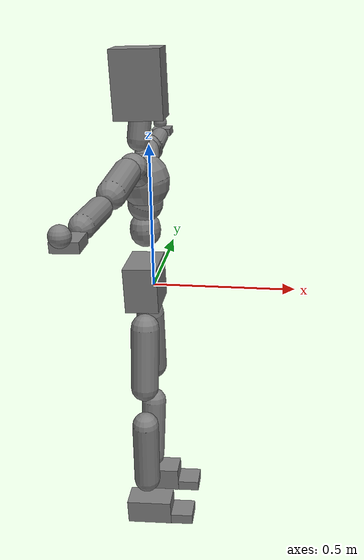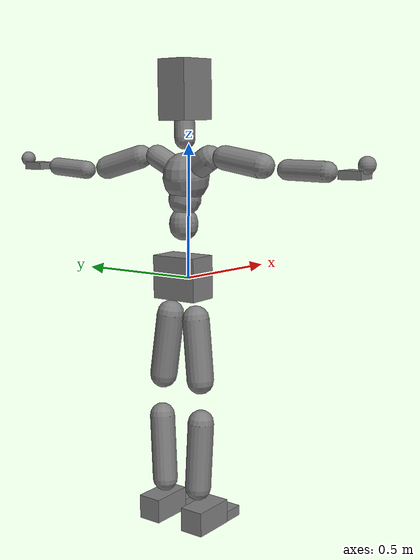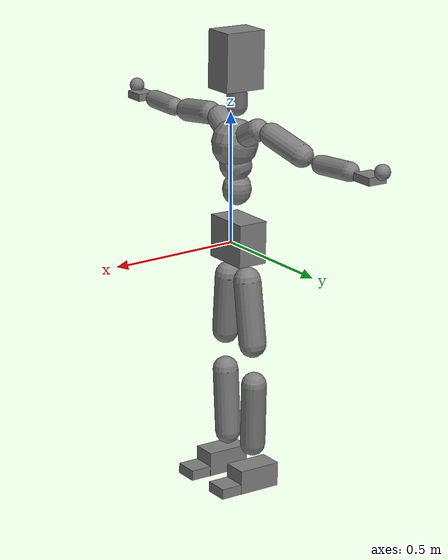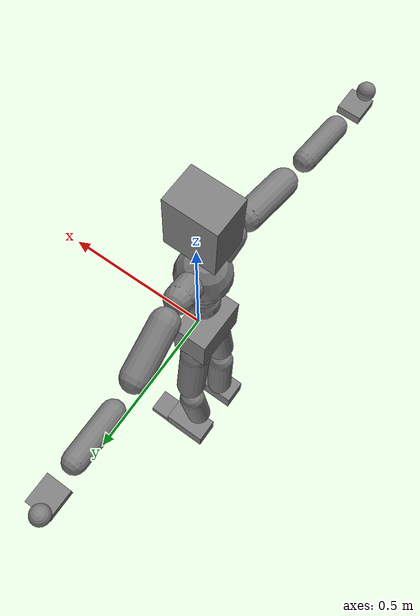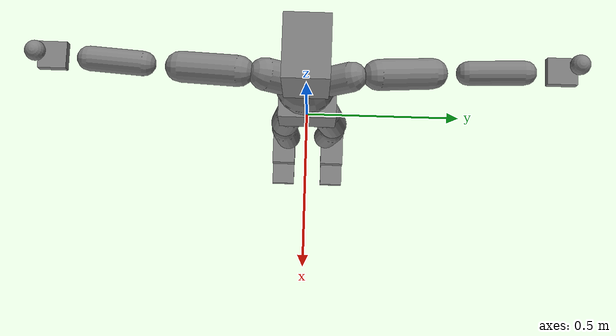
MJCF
<mujoco model="smpl">
  <compiler angle="radian" />
  <default>
    <motor ctrlrange="-1 1" ctrllimited="true" />
    <geom condim="1" friction="1.0 0.05 0.05" solimp=".9 .99 .003" solref=".015 1" />
    <joint limited="true" solimplimit="0 .99 .01" />
    <site size=".04" group="3" />
    <default class="force-torque">
      <site type="box" size=".01 .01 .02" rgba="1 0 0 1" />
    </default>
    <default class="touch">
      <site type="capsule" rgba="0 0 1 .3" />
    </default>
  </default>
  <worldbody>
    <body name="Pelvis" pos="0 0 0">
      <freejoint name="Pelvis" />
      <body name="L_Hip" pos="-0.0068 0.0695 -0.0914">
        <joint name="L_Hip_x" type="hinge" pos="0 0 0" axis="1 0 0" actuatorfrcrange="-300 300" stiffness="500" damping="50" armature="0.02" range="-0.5236 1.5708" />
        <joint name="L_Hip_y" type="hinge" pos="0 0 0" axis="0 1 0" actuatorfrcrange="-300 300" stiffness="500" damping="50" armature="0.02" range="-2.4435 1.0472" />
        <joint name="L_Hip_z" type="hinge" pos="0 0 0" axis="0 0 1" actuatorfrcrange="-300 300" stiffness="500" damping="50" armature="0.02" range="-0.6109 1.0472" />
        <body name="L_Knee" pos="-0.0045 0.0343 -0.3752">
          <joint name="L_Knee_x" type="hinge" pos="0 0 0" axis="1 0 0" actuatorfrcrange="-200 200" stiffness="500" damping="50" armature="0.02" range="-0.5236 0.5236" />
          <joint name="L_Knee_y" type="hinge" pos="0 0 0" axis="0 1 0" actuatorfrcrange="-200 200" stiffness="500" damping="50" armature="0.02" range="0 2.7925" />
          <joint name="L_Knee_z" type="hinge" pos="0 0 0" axis="0 0 1" actuatorfrcrange="-200 200" stiffness="500" damping="50" armature="0.02" range="-0.5236 0.5236" />
          <body name="L_Ankle" pos="-0.0437 -0.0136 -0.398">
            <joint name="L_Ankle_x" type="hinge" pos="0 0 0" axis="1 0 0" actuatorfrcrange="-100 100" stiffness="400" damping="40" armature="0.02" range="-0.5236 0.5236" />
            <joint name="L_Ankle_y" type="hinge" pos="0 0 0" axis="0 1 0" actuatorfrcrange="-100 100" stiffness="400" damping="40" armature="0.02" range="-0.9599 0.9599" />
            <joint name="L_Ankle_z" type="hinge" pos="0 0 0" axis="0 0 1" actuatorfrcrange="-100 100" stiffness="400" damping="40" armature="0.02" range="-0.6981 0.6981" />
            <body name="L_Toe" pos="0.1193 0.0124 -0.0258">
              <joint name="L_Toe_x" type="hinge" pos="0 0 0" axis="1 0 0" actuatorfrcrange="-75 75" stiffness="200" damping="20" armature="0.02" range="-0.5236 0.5236" />
              <joint name="L_Toe_y" type="hinge" pos="0 0 0" axis="0 1 0" actuatorfrcrange="-75 75" stiffness="200" damping="20" armature="0.02" range="-1.0472 1.0472" />
              <joint name="L_Toe_z" type="hinge" pos="0 0 0" axis="0 0 1" actuatorfrcrange="-75 75" stiffness="200" damping="20" armature="0.02" range="-0.5236 0.5236" />
              <geom type="box" pos="0.032978 0.004072 -0.044823" quat="0.999908 0.001143 -0.013176 -0.002963" size="0.0488 0.0457 0.02" density="454.003300" />
            </body>
            <geom type="box" pos="0.031612 0.017127 -0.046894" quat="0.999908 0.001143 -0.013176 -0.002963" size="0.085 0.047 0.0468" density="481.370944" />
          </body>
          <geom type="capsule" contype="1" conaffinity="1" fromto="-0.023675 -0.003870 -0.078988 -0.034489 -0.026312 -0.330410" size="0.0482" density="1575.231354" />
        </body>
        <geom type="capsule" contype="1" conaffinity="1" fromto="-0.023311 -0.006761 -0.047399 -0.024231 0.026718 -0.289634" size="0.0521" density="2015.155608" />
      </body>
      <body name="R_Hip" pos="-0.0043 -0.0677 -0.0905">
        <joint name="R_Hip_x" type="hinge" pos="0 0 0" axis="1 0 0" actuatorfrcrange="-300 300" stiffness="500" damping="50" armature="0.02" range="-1.5708 0.5236" />
        <joint name="R_Hip_y" type="hinge" pos="0 0 0" axis="0 1 0" actuatorfrcrange="-300 300" stiffness="500" damping="50" armature="0.02" range="-2.4435 1.0472" />
        <joint name="R_Hip_z" type="hinge" pos="0 0 0" axis="0 0 1" actuatorfrcrange="-300 300" stiffness="500" damping="50" armature="0.02" range="-1.0472 0.6109" />
        <body name="R_Knee" pos="-0.0089 -0.0383 -0.3826">
          <joint name="R_Knee_x" type="hinge" pos="0 0 0" axis="1 0 0" actuatorfrcrange="-200 200" stiffness="500" damping="50" armature="0.02" range="-0.5236 0.5236" />
          <joint name="R_Knee_y" type="hinge" pos="0 0 0" axis="0 1 0" actuatorfrcrange="-200 200" stiffness="500" damping="50" armature="0.02" range="0 2.7925" />
          <joint name="R_Knee_z" type="hinge" pos="0 0 0" axis="0 0 1" actuatorfrcrange="-200 200" stiffness="500" damping="50" armature="0.02" range="-0.5236 0.5236" />
          <body name="R_Ankle" pos="-0.0423 0.0158 -0.3984">
            <joint name="R_Ankle_x" type="hinge" pos="0 0 0" axis="1 0 0" actuatorfrcrange="-100 100" stiffness="400" damping="40" armature="0.02" range="-0.5236 0.5236" />
            <joint name="R_Ankle_y" type="hinge" pos="0 0 0" axis="0 1 0" actuatorfrcrange="-100 100" stiffness="400" damping="40" armature="0.02" range="-0.9599 0.9599" />
            <joint name="R_Ankle_z" type="hinge" pos="0 0 0" axis="0 0 1" actuatorfrcrange="-100 100" stiffness="400" damping="40" armature="0.02" range="-0.6981 0.6981" />
            <body name="R_Toe" pos="0.1193 -0.0124 -0.0258">
              <joint name="R_Toe_x" type="hinge" pos="0 0 0" axis="1 0 0" actuatorfrcrange="-75 75" stiffness="200" damping="20" armature="0.02" range="-0.5236 0.5236" />
              <joint name="R_Toe_y" type="hinge" pos="0 0 0" axis="0 1 0" actuatorfrcrange="-75 75" stiffness="200" damping="20" armature="0.02" range="-1.0472 1.0472" />
              <joint name="R_Toe_z" type="hinge" pos="0 0 0" axis="0 0 1" actuatorfrcrange="-75 75" stiffness="200" damping="20" armature="0.02" range="-0.5236 0.5236" />
              <geom type="box" pos="0.032256 0.002876 -0.038211" quat="0.999908 0.001143 -0.013176 -0.002963" size="0.0487 0.0457 0.02" density="454.935545" />
            </body>
            <geom type="box" pos="0.030896 -0.008869 -0.040482" quat="0.999908 0.001143 -0.013176 -0.002963" size="0.085 0.047 0.0468" density="481.370944" />
          </body>
          <geom type="capsule" contype="1" conaffinity="1" fromto="-0.022895 0.017724 -0.068731 -0.026983 0.026855 -0.325309" size="0.0497" density="1454.489973" />
        </body>
        <geom type="capsule" contype="1" conaffinity="1" fromto="-0.024211 0.010946 -0.056324 -0.028954 -0.015078 -0.288387" size="0.0512" density="2207.123812" />
      </body>
      <body name="Torso" pos="-0.0267 -0.0025 0.109">
        <joint name="Torso_x" type="hinge" pos="0 0 0" axis="1 0 0" actuatorfrcrange="-300 300" stiffness="1000" damping="100" armature="0.02" range="-1.0472 1.0472" />
        <joint name="Torso_y" type="hinge" pos="0 0 0" axis="0 1 0" actuatorfrcrange="-300 300" stiffness="1000" damping="100" armature="0.02" range="-1.0472 1.5708" />
        <joint name="Torso_z" type="hinge" pos="0 0 0" axis="0 0 1" actuatorfrcrange="-300 300" stiffness="1000" damping="100" armature="0.02" range="-0.8727 0.8727" />
        <body name="Spine" pos="0.0011 0.0055 0.1352">
          <joint name="Spine_x" type="hinge" pos="0 0 0" axis="1 0 0" actuatorfrcrange="-200 200" stiffness="1000" damping="100" armature="0.02" range="-1.0472 1.0472" />
          <joint name="Spine_y" type="hinge" pos="0 0 0" axis="0 1 0" actuatorfrcrange="-200 200" stiffness="1000" damping="100" armature="0.02" range="-1.0472 1.5708" />
          <joint name="Spine_z" type="hinge" pos="0 0 0" axis="0 0 1" actuatorfrcrange="-200 200" stiffness="1000" damping="100" armature="0.02" range="-0.8727 0.8727" />
          <body name="Chest" pos="0.0254 0.0015 0.0529">
            <joint name="Chest_x" type="hinge" pos="0 0 0" axis="1 0 0" actuatorfrcrange="-150 150" stiffness="1000" damping="100" armature="0.02" range="-1.0472 1.0472" />
            <joint name="Chest_y" type="hinge" pos="0 0 0" axis="0 1 0" actuatorfrcrange="-150 150" stiffness="1000" damping="100" armature="0.02" range="-1.0472 1.5708" />
            <joint name="Chest_z" type="hinge" pos="0 0 0" axis="0 0 1" actuatorfrcrange="-150 150" stiffness="1000" damping="100" armature="0.02" range="-0.8727 0.8727" />
            <body name="Neck" pos="-0.0429 -0.0028 0.2139">
              <joint name="Neck_x" type="hinge" pos="0 0 0" axis="1 0 0" actuatorfrcrange="-75 75" stiffness="500" damping="50" armature="0.02" range="-0.8727 0.8727" />
              <joint name="Neck_y" type="hinge" pos="0 0 0" axis="0 1 0" actuatorfrcrange="-75 75" stiffness="500" damping="50" armature="0.02" range="-0.6981 1.0472" />
              <joint name="Neck_z" type="hinge" pos="0 0 0" axis="0 0 1" actuatorfrcrange="-75 75" stiffness="500" damping="50" armature="0.02" range="-0.7854 0.7854" />
              <body name="Head" pos="0.0513 0.0052 0.065">
                <joint name="Head_x" type="hinge" pos="0 0 0" axis="1 0 0" actuatorfrcrange="-25 25" stiffness="200" damping="20" armature="0.02" range="-0.8727 0.8727" />
                <joint name="Head_y" type="hinge" pos="0 0 0" axis="0 1 0" actuatorfrcrange="-25 25" stiffness="200" damping="20" armature="0.02" range="-0.6981 1.0472" />
                <joint name="Head_z" type="hinge" pos="0 0 0" axis="0 0 1" actuatorfrcrange="-25 25" stiffness="200" damping="20" armature="0.02" range="-0.7854 0.7854" />
                <geom type="box" pos="-0.033010 -0.006762 0.117594" quat="0.999908 0.001143 -0.013176 -0.002963" size="0.0812 0.0596 0.1089" density="851.803204" />
              </body>
              <geom type="capsule" contype="1" conaffinity="1" fromto="0.009478 -0.008794 0.006684 0.020772 0.003999 0.108645" size="0.0382" density="539.570660" />
            </body>
            <body name="L_Thorax" pos="-0.0341 0.0788 0.1217">
              <joint name="L_Thorax_x" type="hinge" pos="0 0 0" axis="1 0 0" actuatorfrcrange="-200 200" stiffness="500" damping="50" armature="0.02" range="-0.6981 0.5236" />
              <joint name="L_Thorax_y" type="hinge" pos="0 0 0" axis="0 1 0" actuatorfrcrange="-200 200" stiffness="500" damping="50" armature="0.02" range="-0.5236 0.5236" />
              <joint name="L_Thorax_z" type="hinge" pos="0 0 0" axis="0 0 1" actuatorfrcrange="-200 200" stiffness="500" damping="50" armature="0.02" range="-0.5236 0.5236" />
              <body name="L_Shoulder" pos="-0.0089 0.091 0.0305">
                <joint name="L_Shoulder_x" type="hinge" pos="0 0 0" axis="1 0 0" actuatorfrcrange="-150 150" stiffness="400" damping="40" armature="0.02" range="-2.3562 1.5708" />
                <joint name="L_Shoulder_y" type="hinge" pos="0 0 0" axis="0 1 0" actuatorfrcrange="-150 150" stiffness="400" damping="40" armature="0.02" range="-1.5708 1.5708" />
                <joint name="L_Shoulder_z" type="hinge" pos="0 0 0" axis="0 0 1" actuatorfrcrange="-150 150" stiffness="400" damping="40" armature="0.02" range="-2.7925 1.0472" />
                <body name="L_Elbow" pos="-0.0275 0.2596 -0.0128">
                  <joint name="L_Elbow_x" type="hinge" pos="0 0 0" axis="1 0 0" actuatorfrcrange="-100 100" stiffness="300" damping="30" armature="0.02" range="-0.5236 0.5236" />
                  <joint name="L_Elbow_y" type="hinge" pos="0 0 0" axis="0 1 0" actuatorfrcrange="-100 100" stiffness="300" damping="30" armature="0.02" range="-0.5236 0.5236" />
                  <joint name="L_Elbow_z" type="hinge" pos="0 0 0" axis="0 0 1" actuatorfrcrange="-100 100" stiffness="300" damping="30" armature="0.02" range="-2.7925 0" />
                  <body name="L_Wrist" pos="-0.0012 0.2492 0.009">
                    <joint name="L_Wrist_x" type="hinge" pos="0 0 0" axis="1 0 0" actuatorfrcrange="-75 75" stiffness="200" damping="20" armature="0.02" range="-1.5708 1.5708" />
                    <joint name="L_Wrist_y" type="hinge" pos="0 0 0" axis="0 1 0" actuatorfrcrange="-75 75" stiffness="200" damping="20" armature="0.02" range="-1.5708 1.5708" />
                    <joint name="L_Wrist_z" type="hinge" pos="0 0 0" axis="0 0 1" actuatorfrcrange="-75 75" stiffness="200" damping="20" armature="0.02" range="-1.0472 1.0472" />
                    <body name="L_Hand" pos="-0.0149 0.084 -0.0082">
                      <joint name="L_Hand_x" type="hinge" pos="0 0 0" axis="1 0 0" actuatorfrcrange="-50 50" stiffness="100" damping="10" armature="0.02" range="-1.5708 1.5708" />
                      <joint name="L_Hand_y" type="hinge" pos="0 0 0" axis="0 1 0" actuatorfrcrange="-50 50" stiffness="100" damping="10" armature="0.02" range="-1.5708 1.5708" />
                      <joint name="L_Hand_z" type="hinge" pos="0 0 0" axis="0 0 1" actuatorfrcrange="-50 50" stiffness="100" damping="10" armature="0.02" range="-1.5708 1.5708" />
                      <geom type="sphere" contype="1" conaffinity="1" pos="-0.000000 0.000000 0.000000" size="0.028645" density="1628.332994" />
                    </body>
                    <geom type="box" pos="0.002148 0.038489 -0.035797" quat="0.999908 0.001143 -0.013176 -0.002963" size="0.0381 0.0429 0.0145" density="1572.212342" />
                  </body>
                  <geom type="capsule" contype="1" conaffinity="1" fromto="0.007932 0.025973 -0.039696 0.005272 0.182666 -0.028616" size="0.035" density="1381.032820" />
                </body>
                <geom type="capsule" contype="1" conaffinity="1" fromto="0.004250 0.024698 0.002075 -0.012975 0.181206 -0.041548" size="0.0439" density="1088.480092" />
              </body>
              <geom type="capsule" contype="1" conaffinity="1" fromto="0.011989 -0.022026 0.000198 0.003742 0.042141 0.035335" size="0.0423" density="953.527357" />
            </body>
            <body name="R_Thorax" pos="-0.0386 -0.0818 0.1188">
              <joint name="R_Thorax_x" type="hinge" pos="0 0 0" axis="1 0 0" actuatorfrcrange="-200 200" stiffness="500" damping="50" armature="0.02" range="-0.5236 0.6981" />
              <joint name="R_Thorax_y" type="hinge" pos="0 0 0" axis="0 1 0" actuatorfrcrange="-200 200" stiffness="500" damping="50" armature="0.02" range="-0.5236 0.5236" />
              <joint name="R_Thorax_z" type="hinge" pos="0 0 0" axis="0 0 1" actuatorfrcrange="-200 200" stiffness="500" damping="50" armature="0.02" range="-0.5236 0.5236" />
              <body name="R_Shoulder" pos="-0.0091 -0.096 0.0326">
                <joint name="R_Shoulder_x" type="hinge" pos="0 0 0" axis="1 0 0" actuatorfrcrange="-150 150" stiffness="400" damping="40" armature="0.02" range="-1.5708 2.3562" />
                <joint name="R_Shoulder_y" type="hinge" pos="0 0 0" axis="0 1 0" actuatorfrcrange="-150 150" stiffness="400" damping="40" armature="0.02" range="-1.5708 1.5708" />
                <joint name="R_Shoulder_z" type="hinge" pos="0 0 0" axis="0 0 1" actuatorfrcrange="-150 150" stiffness="400" damping="40" armature="0.02" range="-1.0472 2.7925" />
                <body name="R_Elbow" pos="-0.0214 -0.2537 -0.0133">
                  <joint name="R_Elbow_x" type="hinge" pos="0 0 0" axis="1 0 0" actuatorfrcrange="-100 100" stiffness="300" damping="30" armature="0.02" range="-0.5236 0.5236" />
                  <joint name="R_Elbow_y" type="hinge" pos="0 0 0" axis="0 1 0" actuatorfrcrange="-100 100" stiffness="300" damping="30" armature="0.02" range="-0.5236 0.5236" />
                  <joint name="R_Elbow_z" type="hinge" pos="0 0 0" axis="0 0 1" actuatorfrcrange="-100 100" stiffness="300" damping="30" armature="0.02" range="0 2.7925" />
                  <body name="R_Wrist" pos="-0.0056 -0.2553 0.0078">
                    <joint name="R_Wrist_x" type="hinge" pos="0 0 0" axis="1 0 0" actuatorfrcrange="-75 75" stiffness="200" damping="20" armature="0.02" range="-1.5708 1.5708" />
                    <joint name="R_Wrist_y" type="hinge" pos="0 0 0" axis="0 1 0" actuatorfrcrange="-75 75" stiffness="200" damping="20" armature="0.02" range="-1.5708 1.5708" />
                    <joint name="R_Wrist_z" type="hinge" pos="0 0 0" axis="0 0 1" actuatorfrcrange="-75 75" stiffness="200" damping="20" armature="0.02" range="-1.0472 1.0472" />
                    <body name="R_Hand" pos="-0.0103 -0.0846 -0.0061">
                      <joint name="R_Hand_x" type="hinge" pos="0 0 0" axis="1 0 0" actuatorfrcrange="-50 50" stiffness="100" damping="10" armature="0.02" range="-1.5708 1.5708" />
                      <joint name="R_Hand_y" type="hinge" pos="0 0 0" axis="0 1 0" actuatorfrcrange="-50 50" stiffness="100" damping="10" armature="0.02" range="-1.5708 1.5708" />
                      <joint name="R_Hand_z" type="hinge" pos="0 0 0" axis="0 0 1" actuatorfrcrange="-50 50" stiffness="100" damping="10" armature="0.02" range="-1.5708 1.5708" />
                      <geom type="sphere" contype="1" conaffinity="1" pos="-0.000000 -0.000000 0.000000" size="0.028900" density="1628.332994" />
                    </body>
                    <geom type="box" pos="-0.003467 -0.040282 -0.036614" quat="0.999908 0.001143 -0.013176 -0.002963" size="0.0381 0.0404 0.0145" density="1772.248347" />
                  </body>
                  <geom type="capsule" contype="1" conaffinity="1" fromto="0.008829 -0.035805 -0.019066 -0.002707 -0.190332 -0.022412" size="0.0353" density="1394.179558" />
                </body>
                <geom type="capsule" contype="1" conaffinity="1" fromto="0.009013 -0.017211 0.003517 -0.004392 -0.182774 -0.022511" size="0.044" density="1040.980715" />
              </body>
              <geom type="capsule" contype="1" conaffinity="1" fromto="0.011308 0.016506 0.001292 0.006016 -0.039341 0.033840" size="0.0465" density="808.743550" />
            </body>
            <geom type="capsule" contype="1" conaffinity="1" fromto="-0.019610 -0.007936 0.076906 -0.020990 -0.008053 0.087473" size="0.0867" density="3739.829882" />
          </body>
          <geom type="capsule" contype="1" conaffinity="1" fromto="0.004529 -0.000348 0.053759 0.005988 -0.001269 0.058897" size="0.0612" density="3451.682169" />
        </body>
        <geom type="capsule" contype="1" conaffinity="1" fromto="0.002856 0.006803 0.089555 0.002193 0.007274 0.103443" size="0.0539" density="3670.346655" />
      </body>
      <geom type="box" pos="-0.032369 0.001901 0.009059" quat="0.999908 0.001143 -0.013176 -0.002963" size="0.0593 0.0936 0.0815" density="1687.594089" />
    </body>
  </worldbody>
  <actuator>
    <motor name="L_Hip_x" joint="L_Hip_x" gear="300" />
    <motor name="L_Hip_y" joint="L_Hip_y" gear="300" />
    <motor name="L_Hip_z" joint="L_Hip_z" gear="300" />
    <motor name="L_Knee_x" joint="L_Knee_x" gear="200" />
    <motor name="L_Knee_y" joint="L_Knee_y" gear="200" />
    <motor name="L_Knee_z" joint="L_Knee_z" gear="200" />
    <motor name="L_Ankle_x" joint="L_Ankle_x" gear="100" />
    <motor name="L_Ankle_y" joint="L_Ankle_y" gear="100" />
    <motor name="L_Ankle_z" joint="L_Ankle_z" gear="100" />
    <motor name="L_Toe_x" joint="L_Toe_x" gear="75" />
    <motor name="L_Toe_y" joint="L_Toe_y" gear="75" />
    <motor name="L_Toe_z" joint="L_Toe_z" gear="75" />
    <motor name="R_Hip_x" joint="R_Hip_x" gear="300" />
    <motor name="R_Hip_y" joint="R_Hip_y" gear="300" />
    <motor name="R_Hip_z" joint="R_Hip_z" gear="300" />
    <motor name="R_Knee_x" joint="R_Knee_x" gear="200" />
    <motor name="R_Knee_y" joint="R_Knee_y" gear="200" />
    <motor name="R_Knee_z" joint="R_Knee_z" gear="200" />
    <motor name="R_Ankle_x" joint="R_Ankle_x" gear="100" />
    <motor name="R_Ankle_y" joint="R_Ankle_y" gear="100" />
    <motor name="R_Ankle_z" joint="R_Ankle_z" gear="100" />
    <motor name="R_Toe_x" joint="R_Toe_x" gear="75" />
    <motor name="R_Toe_y" joint="R_Toe_y" gear="75" />
    <motor name="R_Toe_z" joint="R_Toe_z" gear="75" />
    <motor name="Torso_x" joint="Torso_x" gear="300" />
    <motor name="Torso_y" joint="Torso_y" gear="300" />
    <motor name="Torso_z" joint="Torso_z" gear="300" />
    <motor name="Spine_x" joint="Spine_x" gear="200" />
    <motor name="Spine_y" joint="Spine_y" gear="200" />
    <motor name="Spine_z" joint="Spine_z" gear="200" />
    <motor name="Chest_x" joint="Chest_x" gear="150" />
    <motor name="Chest_y" joint="Chest_y" gear="150" />
    <motor name="Chest_z" joint="Chest_z" gear="150" />
    <motor name="Neck_x" joint="Neck_x" gear="75" />
    <motor name="Neck_y" joint="Neck_y" gear="75" />
    <motor name="Neck_z" joint="Neck_z" gear="75" />
    <motor name="Head_x" joint="Head_x" gear="25" />
    <motor name="Head_y" joint="Head_y" gear="25" />
    <motor name="Head_z" joint="Head_z" gear="25" />
    <motor name="L_Thorax_x" joint="L_Thorax_x" gear="200" />
    <motor name="L_Thorax_y" joint="L_Thorax_y" gear="200" />
    <motor name="L_Thorax_z" joint="L_Thorax_z" gear="200" />
    <motor name="L_Shoulder_x" joint="L_Shoulder_x" gear="150" />
    <motor name="L_Shoulder_y" joint="L_Shoulder_y" gear="150" />
    <motor name="L_Shoulder_z" joint="L_Shoulder_z" gear="150" />
    <motor name="L_Elbow_x" joint="L_Elbow_x" gear="100" />
    <motor name="L_Elbow_y" joint="L_Elbow_y" gear="100" />
    <motor name="L_Elbow_z" joint="L_Elbow_z" gear="100" />
    <motor name="L_Wrist_x" joint="L_Wrist_x" gear="75" />
    <motor name="L_Wrist_y" joint="L_Wrist_y" gear="75" />
    <motor name="L_Wrist_z" joint="L_Wrist_z" gear="75" />
    <motor name="L_Hand_x" joint="L_Hand_x" gear="50" />
    <motor name="L_Hand_y" joint="L_Hand_y" gear="50" />
    <motor name="L_Hand_z" joint="L_Hand_z" gear="50" />
    <motor name="R_Thorax_x" joint="R_Thorax_x" gear="200" />
    <motor name="R_Thorax_y" joint="R_Thorax_y" gear="200" />
    <motor name="R_Thorax_z" joint="R_Thorax_z" gear="200" />
    <motor name="R_Shoulder_x" joint="R_Shoulder_x" gear="150" />
    <motor name="R_Shoulder_y" joint="R_Shoulder_y" gear="150" />
    <motor name="R_Shoulder_z" joint="R_Shoulder_z" gear="150" />
    <motor name="R_Elbow_x" joint="R_Elbow_x" gear="100" />
    <motor name="R_Elbow_y" joint="R_Elbow_y" gear="100" />
    <motor name="R_Elbow_z" joint="R_Elbow_z" gear="100" />
    <motor name="R_Wrist_x" joint="R_Wrist_x" gear="75" />
    <motor name="R_Wrist_y" joint="R_Wrist_y" gear="75" />
    <motor name="R_Wrist_z" joint="R_Wrist_z" gear="75" />
    <motor name="R_Hand_x" joint="R_Hand_x" gear="50" />
    <motor name="R_Hand_y" joint="R_Hand_y" gear="50" />
    <motor name="R_Hand_z" joint="R_Hand_z" gear="50" />
  </actuator>
</mujoco>
